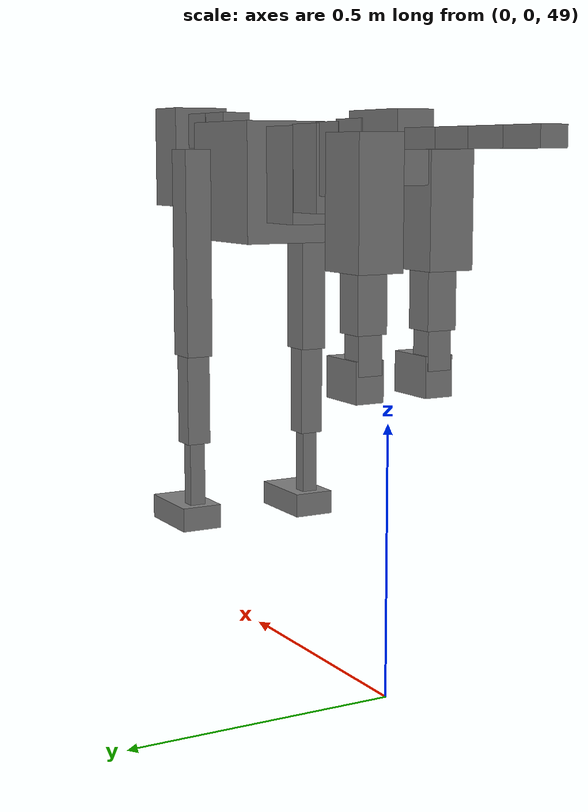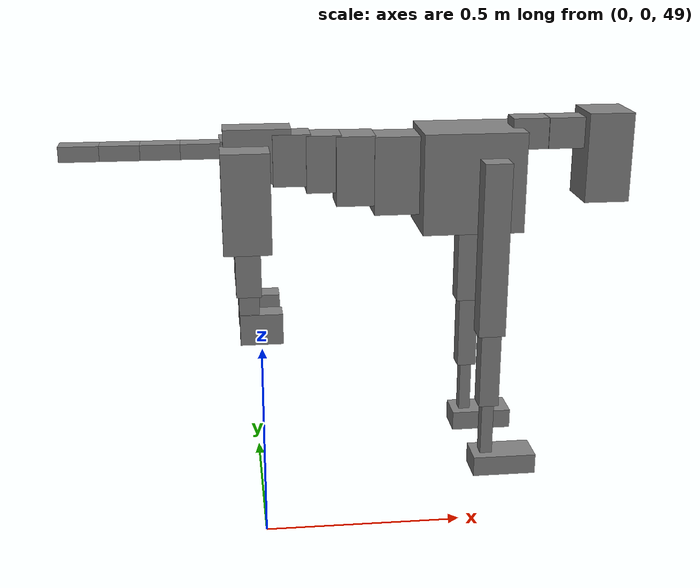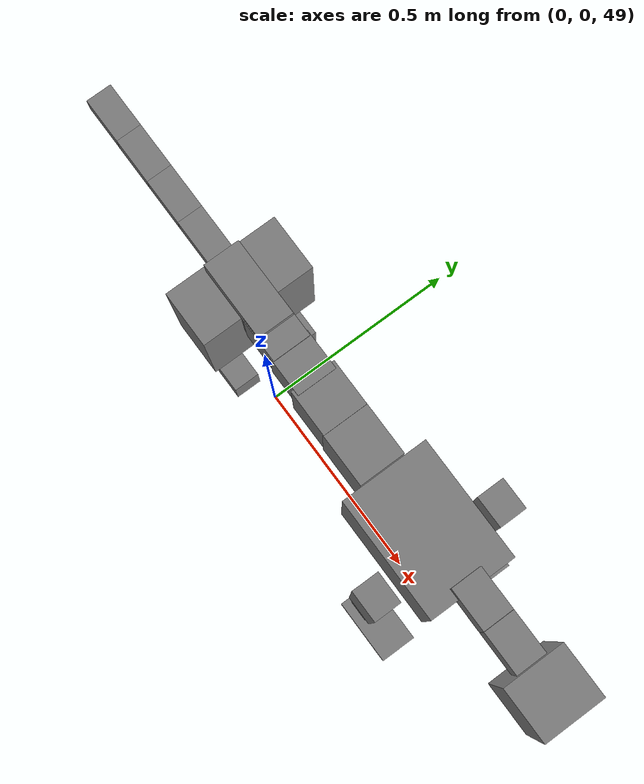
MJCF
<mujoco model="dog">

    <default>
        <joint armature="0.02" stiffness="1" damping="0.2" limited="true"/>
        <geom condim="3" friction="1 0.05 0.05" margin="0.01"/>
        <motor ctrllimited="true" ctrlrange="-1.0 1.0" forcelimited="true" gear="50"/>
    </default>

    <compiler inertiafromgeom="true" angle="radian"/>

    <option timestep="0.016" iterations="50" tolerance="1e-10" solver="Newton" jacobian="dense" cone="pyramidal"/>

    <size nconmax="20000" njmax="60000" nstack="5000000"/>
    <visual>
        <map force="0.1" zfar="30"/>
        <rgba haze="0.15 0.25 0.35 1"/>
        <quality shadowsize="2048"/>
        <global offwidth="800" offheight="800"/>
    </visual>

    <asset>
        <texture type="skybox" builtin="gradient" rgb1="0.3 0.5 0.7" rgb2="0 0 0" width="512" height="512"/>
        <texture name="texplane" type="2d" builtin="checker" rgb1=".2 .3 .4" rgb2=".1 0.15 0.2" width="512" height="512"
                 mark="cross" markrgb=".8 .8 .8"/>
        <texture name="texgeom" type="cube" builtin="flat" mark="cross" width="127" height="1278" rgb1="0.8 0.6 0.4"
                 rgb2="0.8 0.6 0.4" markrgb="1 1 1" random="0.01"/>

        <material name="matplane" reflectance="0.3" texture="texplane" texrepeat="1 1" texuniform="true"/>
        <material name="matgeom" texture="texgeom" texuniform="true" rgba="0.8 0.6 .4 1"/>
    </asset>

    <worldbody>
        <geom name="floor" pos="0 0 0" size="0 0 .25" type="plane" material="matplane" condim="3"/>

        <light directional="false" diffuse=".2 .2 .2" specular="0 0 0" pos="0 0 5" dir="0 0 -1" castshadow="false"/>
        <light mode="targetbodycom" target="torso" directional="false" diffuse=".8 .8 .8" specular="0.3 0.3 0.3"
               pos="0 0 4.0" dir="0 0 -1"/>

        <body name="root" pos="0 0 50">
            <freejoint name="root_1"/>
            <geom type="box" pos="0 0 -0.02" size="0.0774  0.0358  0.063" density="2030"/>

            <body name="spine1" pos="0.054 0 0">
                <joint name="spine1_y" axis="0 1 0" range="0 0.7" limited="true"/>
                <geom type="box" pos="0.02375 0 -0.03" size="0.04375  0.0375  0.05985" density="2030"/>

                <body name="spine2" pos="0.0612 0 0">
                    <joint name="spine2_y" axis="0 1 0" range="-0.15 0.15" limited="true"/>
                    <geom type="box" pos="0.03555  0  -0.04" size="0.04055  0.039  0.06615" density="2030"/>

                    <body name="spine3" pos="0.0730 0 0">
                        <joint name="spine3_y" axis="0 1 0" range="-0.15 0.15" limited="true"/>
                        <geom type="box" pos="0.03555  0  -0.057" size="0.04555  0.0445  0.081" density="2030"/>

                        <body name="spine4" pos="0.0780 0 0">
                            <joint name="spine4_y" axis="0 1 0" range="-0.15 0.15" limited="true"/>
                            <geom type="box" pos="0.05265  0  -0.07" size="0.05265  0.045  0.09135" density="2030"/>

                            <body name="torso" pos="0.1082 0 0">
                                <joint name="torso_y" axis="0 1 0" range="-0.15 0.15" limited="true"/>
                                <geom type="box" pos="0.11925  0  -0.085" size="0.11925  0.085  0.11745"
                                      density="2030"/>

                                <body name="neck1" pos="0.2160  0   0.0180">
                                    <joint name="neck1_y" axis="0 1 0" range="-1.2  -1" limited="true"/>
                                    <geom type="box" pos="0.0423  0  0" size="0.0423  0.03  0.036" density="2325"/>

                                    <body name="neck2" pos="0.0853  0  0">
                                        <joint name="neck2_y" axis="0 1 0" range="0.1  0" limited="true"/>
                                        <geom type="box" pos="0.0423  0  0" size="0.0423  0.03  0.036" density="2325"/>

                                        <body name="head" pos="0.0853  0  0">
                                            <joint name="head_y" axis="0 1 0" range="-0.3  -0.2" limited="true"/>
                                            <geom type="box" pos="0.0531  0  -0.055" size="0.0531  0.06  0.1044"
                                                  density="4030"/>

                                        </body>
                                    </body>
                                </body>

                                <body name="front_shoulder" pos="0.156  0   -0.0480">
                                    <joint name="front_shoulder_y" axis="0 1 0" range="-1 1.5" limited="true"/>
                                    <geom type="box" pos="0 0.13 -0.1785" size="0.0317  0.0271  0.2051" density="1158"/>
                                    <geom type="box" pos="0 -0.13 -0.1785" size="0.0317  0.0271  0.2051"
                                          density="1158"/>

                                    <body name="front_elbow" pos="0  0  -0.3570">
                                        <joint name="front_elbow_y" axis="0 1 0" range="-2 0" limited="true"/>
                                        <geom type="box" pos="0 0.13 -0.1024" size="0.0236  0.0242  0.1024"
                                              density="1081"/>
                                        <geom type="box" pos="0 -0.13 -0.1024" size="0.0236  0.0242  0.1024"
                                              density="1081"/>

                                        <body name="front_wrist" pos="0  0  -0.2048">
                                            <joint name="front_wrist_y" axis="0 1 0" range="-0.2 0" limited="true"/>
                                            <geom type="box" pos="0 0.13 -0.0710" size="0.0144  0.0160  0.0842"
                                                  density="1664"/>
                                            <geom type="box" pos="0 -0.13 -0.0710" size="0.0144  0.0160  0.0842"
                                                  density="1664"/>

                                            <body name="front_finger_end" pos="0  0  -0.1420">
                                                <joint name="front_finger_y" axis="0 1 0" range="-0.4 1"
                                                       limited="true"/>
                                                <geom type="box" pos="0.0413  0.13  -0.0092"
                                                      size="0.0757  0.0413  0.0242" density="1515"/>
                                                <geom type="box" pos="0.0413  -0.13  -0.0092"
                                                      size="0.0757  0.0413  0.0242" density="1515"/>

                                            </body>

                                        </body>
                                    </body>
                                </body>

                            </body>
                        </body>
                    </body>
                </body>
            </body>

            <body name="back_hip" pos="-0.03 0 -0.018">
                <joint name="back_hip_y" axis="0 1 0" range="-1.5 0.3" limited="true"/>
                <geom type="box" pos="0 0.07 -0.0937" size="0.0552  0.0433  0.1165" density="1154"/>
                <geom type="box" pos="0 -0.07 -0.0937" size="0.0552  0.0433  0.1165" density="1154"/>

                <body name="back_knee" pos="0  0  -0.1873">
                    <joint name="back_knee_y" axis="0 1 0" range="0 2.8" limited="true"/>
                    <geom type="box" pos="0 0.07 -0.0558" size="0.0292  0.0287  0.0714" density="1227"/>
                    <geom type="box" pos="0 -0.07 -0.0558" size="0.0292  0.0287  0.0714" density="1227"/>

                    <body name="back_ankle" pos="0  0  -0.1116">
                        <joint name="back_ankle_y" axis="0 1 0" range="-2.2 0" limited="true"/>
                        <geom type="box" pos="0 0.07 -0.0374" size="0.0233  0.0233  0.0486" density="1284"/>
                        <geom type="box" pos="0 -0.07 -0.0374" size="0.0233  0.0233  0.0486" density="1284"/>

                        <body name="back_toe_end" pos="0  0  -0.0747">
                            <joint name="back_toe_y" axis="0 1 0" range="-0.4 1" limited="true"/>
                            <geom type="box" pos="0.0271  0.07  -0.0218" size="0.0497  0.0271  0.0368" density="1515"/>
                            <geom type="box" pos="0.0271  -0.07  -0.0218" size="0.0497  0.0271  0.0368" density="1515"/>

                        </body>
                    </body>
                </body>
            </body>

            <body name="tail1" pos="-0.074 0 -0.006">
                <joint name="tail1_y" axis="0 1 0" range="-0.2 0.2" limited="true"/>
                <geom type="box" pos="-0.0536  0  0" size="0.045  0.025  0.0175" density="1587"/>

                <body name="tail2" pos="-0.09 0 0">
                    <joint name="tail2_y" axis="0 1 0" range="-0.2 0.2" limited="true"/>
                    <geom type="box" pos="-0.0536  0  0" size="0.045  0.025  0.0175" density="1587"/>

                    <body name="tail3" pos="-0.09 0 0">
                        <joint name="tail3_y" axis="0 1 0" range="-0.2 0.2" limited="true"/>
                        <geom type="box" pos="-0.0536  0  0" size="0.045  0.025  0.0175" density="1587"/>

                        <body name="tail4" pos="-0.09 0 0">
                            <joint name="tail4_y" axis="0 1 0" range="-0.2 0.2" limited="true"/>
                            <geom type="box" pos="-0.0536  0  0" size="0.045  0.025  0.0175" density="1587"/>

                        </body>
                    </body>
                </body>
            </body>
        </body>
    </worldbody>

    <actuator>
        <motor joint="spine1_y" forcerange="-150 150     "/>
        <motor joint="spine2_y" forcerange="-150 150     "/>
        <motor joint="spine3_y" forcerange="-150 150     "/>
        <motor joint="spine4_y" forcerange="-150 150     "/>
        <motor joint="torso_y" forcerange="-150 150     "/>
        <motor joint="neck1_y" forcerange="-100 100       "/>
        <motor joint="neck2_y" forcerange="-100 100       "/>
        <motor joint="head_y" forcerange="-150 150       "/>
        <motor joint="front_shoulder_y" forcerange="-141.47 139.09"/>
        <motor joint="front_elbow_y" forcerange="-138.28 137.50"/>
        <motor joint="front_wrist_y" forcerange="-72.68 54.95"/>
        <motor joint="front_finger_y" forcerange="-80.37 99.96"/>
        <motor joint="back_hip_y" forcerange="-396.56 380.97"/>
        <motor joint="back_knee_y" forcerange="-388.42 229.62"/>
        <motor joint="back_angle_y" forcerange="-59.27 213.04"/>
        <motor joint="back_toe_y" forcerange="-74.76 62.31"/>
        <motor joint="tail1_y" forcerange="-50 50     "/>
        <motor joint="tail2_y" forcerange="-50 50     "/>
        <motor joint="tail3_y" forcerange="-50 50     "/>
        <motor joint="tail4_y" forcerange="-50 50     "/>
    </actuator>
</mujoco>
